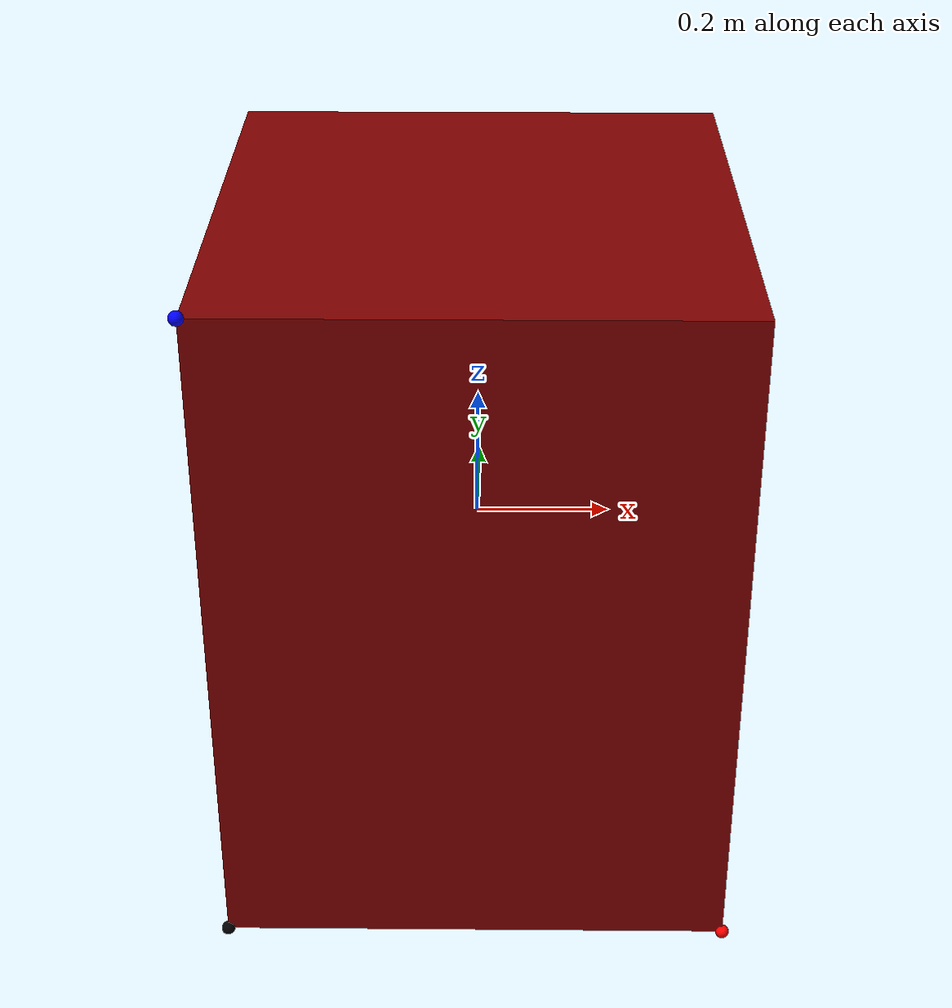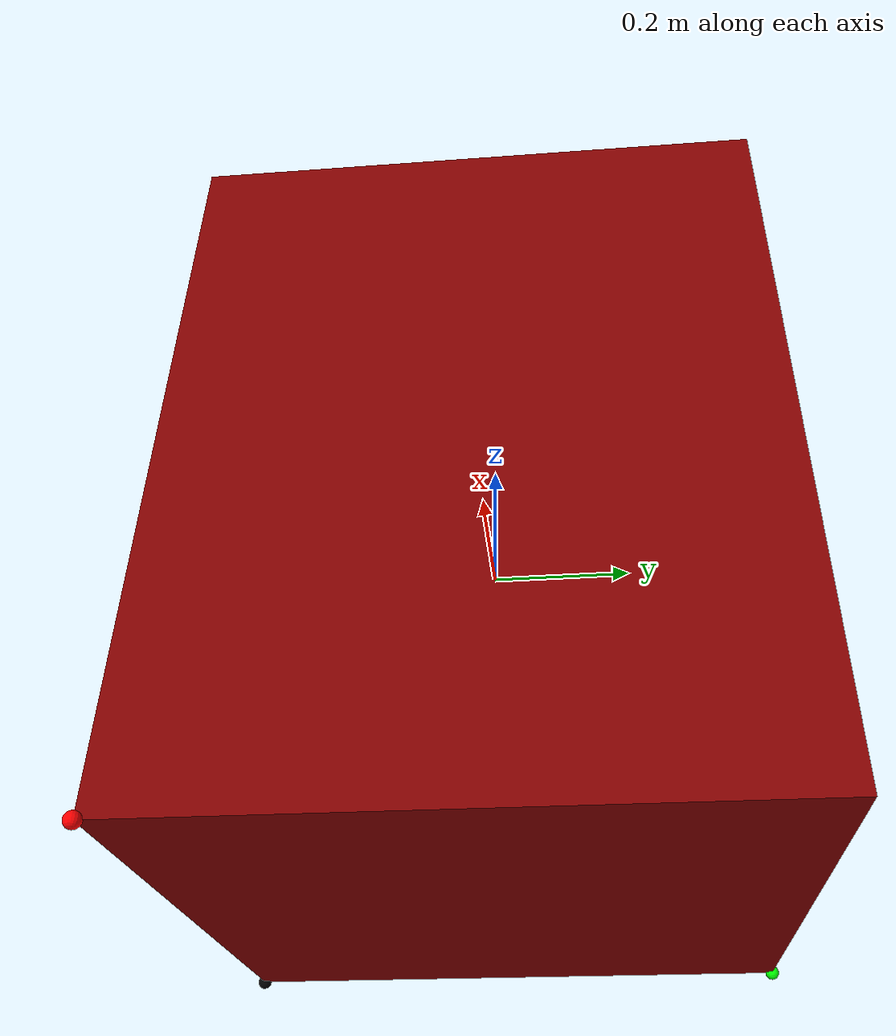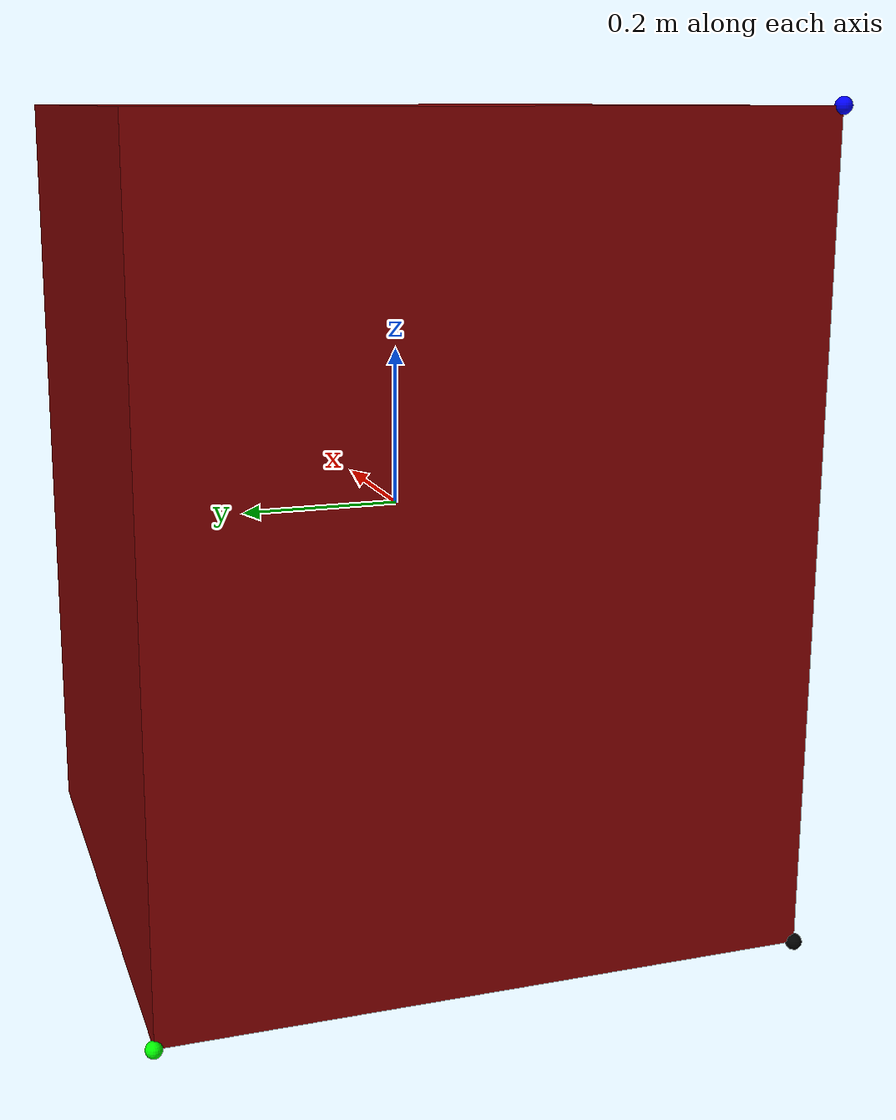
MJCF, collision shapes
<mujoco model="model">
  <compiler angle="radian"/>
  <asset>
    <texture file="visuals/material_0.png" name="tex-model" type="2d"/>
    <texture type="2d" name="image11" file="visuals/image11.png"/>
    <texture type="2d" name="image0" file="visuals/image0.png"/>
    <texture type="2d" name="image14" file="visuals/image14.png"/>
    <texture type="2d" name="image4" file="visuals/image4.png"/>
    <texture type="2d" name="image8" file="visuals/image8.png"/>
    <material name="model" reflectance="0.5" texrepeat="1 1" texture="tex-model" texuniform="false"/>
    <material name="flowerpot" texture="image11" specular="0.5" shininess="0.25"/>
    <material name="ground" texture="image0" specular="0.5" shininess="0.25"/>
    <material name="leaf" texture="image14" specular="0.5" shininess="0.25"/>
    <material name="stem" texture="image4" specular="0.5" shininess="0.25"/>
    <material name="stones" texture="image8" specular="0.5" shininess="0.25"/>
    <mesh file="visuals/model_0.obj" name="model_0_vis" scale="1 1 1"/>
    <mesh file="visuals/model_1.obj" name="model_1_vis" scale="1 1 1"/>
    <mesh file="visuals/model_2.obj" name="model_2_vis" scale="1 1 1"/>
    <mesh file="visuals/model_3.obj" name="model_3_vis" scale="1 1 1"/>
    <mesh file="visuals/model_4.obj" name="model_4_vis" scale="1 1 1"/>
  </asset>
  <default>
    <default class="visual">
      <geom conaffinity="0" contype="0" group="1" type="mesh"/>
    </default>
    <default class="collision">
      <geom group="0" rgba="0.5 0 0 0.5"/>
    </default>
  </default>
  <worldbody>
    <body>
      <!-- exterior bounding box points -->
      <site rgba="0 0 0 1" size="0.01" pos="-0.37013417138315025 -0.3952002266856062 -0.5" name="ext_p0"/>
      <site rgba="1 0 0 1" size="0.01" pos="0.37013417138315025 -0.3952002266856062 -0.5" name="ext_px"/>
      <site rgba="0 1 0 1" size="0.01" pos="-0.37013417138315025 0.3952002266856062 -0.5" name="ext_py"/>
      <site rgba="0 0 1 1" size="0.01" pos="-0.37013417138315025 -0.3952002266856062 0.5" name="ext_pz"/>
      <!-- interior bounding box points -->
      <body name="object">
        <geom solimp="0.998 0.998 0.001" solref="0.001 1" density="100" friction="0.95 0.3 0.1" type="mesh" mesh="model_0_vis" material="stem" class="visual"/>
        <geom solimp="0.998 0.998 0.001" solref="0.001 1" density="100" friction="0.95 0.3 0.1" type="mesh" mesh="model_1_vis" material="leaf" class="visual"/>
        <geom solimp="0.998 0.998 0.001" solref="0.001 1" density="100" friction="0.95 0.3 0.1" type="mesh" mesh="model_2_vis" material="flowerpot" class="visual"/>
        <geom solimp="0.998 0.998 0.001" solref="0.001 1" density="100" friction="0.95 0.3 0.1" type="mesh" mesh="model_3_vis" material="stones" class="visual"/>
        <geom class="collision" type="box" pos="0 0 0" size="0.37013417138315025 0.3952002266856062 0.5"/>
      </body>
    </body>
  </worldbody>
</mujoco>
